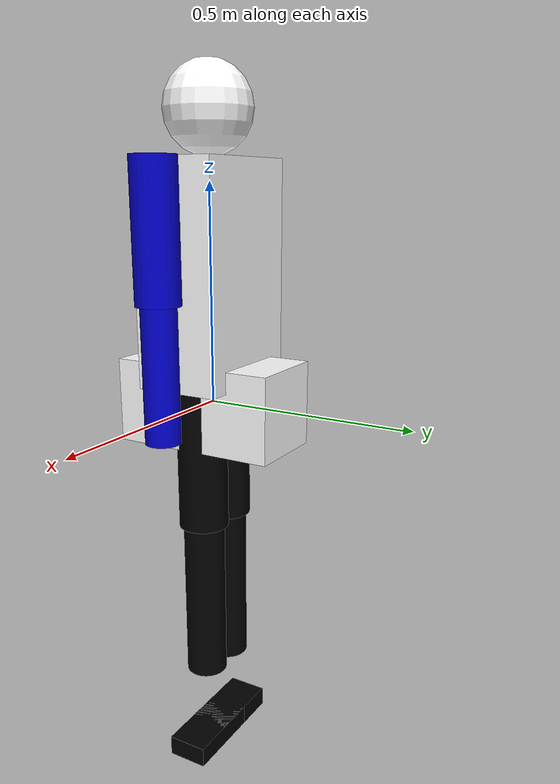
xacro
<?xml version="1.0" ?>
<robot name="simple_humanoid" xmlns:xacro="http://www.ros.org/wiki/xacro">

  <!-- Constants -->
  <xacro:property name="M_PI" value="3.1415926535897931" />

  <!-- Materials -->
  <material name="blue">
    <color rgba="0.0 0.0 0.8 1.0"/>
  </material>
  <material name="black">
    <color rgba="0.0 0.0 0.0 1.0"/>
  </material>
  <material name="white">
    <color rgba="1.0 1.0 1.0 1.0"/>
  </material>

  <!-- Base Link -->
  <link name="base_link">
    <visual>
      <geometry>
        <box size="0.2 .4 .2"/>
      </geometry>
      <material name="white"/>
    </visual>
    <collision>
      <geometry>
        <box size="0.2 .4 .2"/>
      </geometry>
    </collision>
    <inertial>
      <mass value="5.0"/>
      <inertia ixx="0.1" ixy="0.0" ixz="0.0" iyy="0.1" iyz="0.0" izz="0.1"/>
    </inertial>
  </link>

  <!-- Torso -->
  <joint name="torso_joint" type="fixed">
    <parent link="base_link"/>
    <child link="torso"/>
    <origin xyz="0 0 0.3" rpy="0 0 0"/>
  </joint>

  <link name="torso">
    <visual>
      <geometry>
        <box size="0.3 0.2 0.5"/>
      </geometry>
      <material name="white"/>
    </visual>
    <collision>
      <geometry>
        <box size="0.3 0.2 0.5"/>
      </geometry>
    </collision>
    <inertial>
      <mass value="10.0"/>
      <inertia ixx="0.2" ixy="0.0" ixz="0.0" iyy="0.3" iyz="0.0" izz="0.2"/>
    </inertial>
  </link>

  <!-- Head -->
  <joint name="neck_joint" type="revolute">
    <parent link="torso"/>
    <child link="head"/>
    <origin xyz="0 0 0.35" rpy="0 0 0"/>
    <axis xyz="0 1 0"/>
    <limit lower="${-M_PI/2}" upper="${M_PI/2}" effort="100" velocity="1"/>
  </joint>

  <link name="head">
    <visual>
      <geometry>
        <sphere radius="0.1"/>
      </geometry>
      <material name="white"/>
    </visual>
    <collision>
      <geometry>
        <sphere radius="0.1"/>
      </geometry>
    </collision>
    <inertial>
      <mass value="2.0"/>
      <inertia ixx="0.01" ixy="0.0" ixz="0.0" iyy="0.01" iyz="0.0" izz="0.01"/>
    </inertial>
  </link>

  <!-- Left Arm -->
  <joint name="left_shoulder_joint" type="revolute">
    <parent link="torso"/>
    <child link="left_upper_arm"/>
    <origin xyz="0.2 0 0.1" rpy="0 0 0"/>
    <axis xyz="1 0 0"/>
    <limit lower="${-M_PI/2}" upper="${M_PI/2}" effort="100" velocity="1"/>
  </joint>

  <link name="left_upper_arm">
    <visual>
      <geometry>
        <cylinder length="0.3" radius="0.05"/>
      </geometry>
      <material name="blue"/>
    </visual>
    <collision>
      <geometry>
        <cylinder length="0.3" radius="0.05"/>
      </geometry>
    </collision>
    <inertial>
      <mass value="2.0"/>
      <inertia ixx="0.01" ixy="0.0" ixz="0.0" iyy="0.01" iyz="0.0" izz="0.01"/>
    </inertial>
  </link>

  <joint name="left_elbow_joint" type="revolute">
    <parent link="left_upper_arm"/>
    <child link="left_lower_arm"/>
    <origin xyz="0 0 -0.3" rpy="0 0 0"/>
    <axis xyz="1 0 0"/>
    <limit lower="${-M_PI/2}" upper="${M_PI/2}" effort="100" velocity="1"/>
  </joint>

  <link name="left_lower_arm">
    <visual>
      <geometry>
        <cylinder length="0.3" radius="0.04"/>
      </geometry>
      <material name="blue"/>
    </visual>
    <collision>
      <geometry>
        <cylinder length="0.3" radius="0.04"/>
      </geometry>
    </collision>
    <inertial>
      <mass value="1.5"/>
      <inertia ixx="0.01" ixy="0.0" ixz="0.0" iyy="0.01" iyz="0.0" izz="0.01"/>
    </inertial>
  </link>

  <!-- Right Arm -->
  <joint name="right_shoulder_joint" type="revolute">
    <parent link="torso"/>
    <child link="right_upper_arm"/>
    <origin xyz="-0.2 0 0.1" rpy="0 0 0"/>
    <axis xyz="1 0 0"/>
    <limit lower="${-M_PI/2}" upper="${M_PI/2}" effort="100" velocity="1"/>
  </joint>

  <link name="right_upper_arm">
    <visual>
      <geometry>
        <cylinder length="0.3" radius="0.05"/>
      </geometry>
      <material name="blue"/>
    </visual>
    <collision>
      <geometry>
        <cylinder length="0.3" radius="0.05"/>
      </geometry>
    </collision>
    <inertial>
      <mass value="2.0"/>
      <inertia ixx="0.01" ixy="0.0" ixz="0.0" iyy="0.01" iyz="0.0" izz="0.01"/>
    </inertial>
  </link>

  <joint name="right_elbow_joint" type="revolute">
    <parent link="right_upper_arm"/>
    <child link="right_lower_arm"/>
    <origin xyz="0 0 -0.3" rpy="0 0 0"/>
    <axis xyz="1 0 0"/>
    <limit lower="${-M_PI/2}" upper="${M_PI/2}" effort="100" velocity="1"/>
  </joint>

  <link name="right_lower_arm">
    <visual>
      <geometry>
        <cylinder length="0.3" radius="0.04"/>
      </geometry>
      <material name="blue"/>
    </visual>
    <collision>
      <geometry>
        <cylinder length="0.3" radius="0.04"/>
      </geometry>
    </collision>
    <inertial>
      <mass value="1.5"/>
      <inertia ixx="0.01" ixy="0.0" ixz="0.0" iyy="0.01" iyz="0.0" izz="0.01"/>
    </inertial>
  </link>

  <!-- Left Leg -->
  <joint name="left_hip_joint" type="revolute">
    <parent link="base_link"/>
    <child link="left_upper_leg"/>
    <origin xyz="0.05 0 -0.1" rpy="0 0 0"/>
    <axis xyz="1 0 0"/>
    <limit lower="${-M_PI/2}" upper="${M_PI/2}" effort="200" velocity="1"/>
  </joint>

  <link name="left_upper_leg">
    <visual>
      <geometry>
        <cylinder length="0.4" radius="0.06"/>
      </geometry>
      <material name="black"/>
    </visual>
    <collision>
      <geometry>
        <cylinder length="0.4" radius="0.06"/>
      </geometry>
    </collision>
    <inertial>
      <mass value="3.0"/>
      <inertia ixx="0.02" ixy="0.0" ixz="0.0" iyy="0.02" iyz="0.0" izz="0.02"/>
    </inertial>
  </link>

  <joint name="left_knee_joint" type="revolute">
    <parent link="left_upper_leg"/>
    <child link="left_lower_leg"/>
    <origin xyz="0 0 -0.4" rpy="0 0 0"/>
    <axis xyz="1 0 0"/>
    <limit lower="${-M_PI/2}" upper="${M_PI/2}" effort="200" velocity="1"/>
  </joint>

  <link name="left_lower_leg">
    <visual>
      <geometry>
        <cylinder length="0.4" radius="0.05"/>
      </geometry>
      <material name="black"/>
    </visual>
    <collision>
      <geometry>
        <cylinder length="0.4" radius="0.05"/>
      </geometry>
    </collision>
    <inertial>
      <mass value="2.5"/>
      <inertia ixx="0.02" ixy="0.0" ixz="0.0" iyy="0.02" iyz="0.0" izz="0.02"/>
    </inertial>
  </link>

  <joint name="left_ankle_joint" type="revolute">
    <parent link="left_lower_leg"/>
    <child link="left_foot"/>
    <origin xyz="0 0 -0.4" rpy="0 0 0"/>
    <axis xyz="1 0 0"/>
    <limit lower="${-M_PI/4}" upper="${M_PI/4}" effort="100" velocity="1"/>
  </joint>

  <link name="left_foot">
    <visual>
      <geometry>
        <box size="0.2 0.1 0.05"/>
      </geometry>
      <material name="black"/>
    </visual>
    <collision>
      <geometry>
        <box size="0.2 0.1 0.05"/>
      </geometry>
    </collision>
    <inertial>
      <mass value="1.0"/>
      <inertia ixx="0.01" ixy="0.0" ixz="0.0" iyy="0.01" iyz="0.0" izz="0.01"/>
    </inertial>
  </link>

  <!-- Right Leg -->
  <joint name="right_hip_joint" type="revolute">
    <parent link="base_link"/>
    <child link="right_upper_leg"/>
    <origin xyz="-0.05 0 -0.1" rpy="0 0 0"/>
    <axis xyz="1 0 0"/>
    <limit lower="${-M_PI/2}" upper="${M_PI/2}" effort="200" velocity="1"/>
  </joint>

  <link name="right_upper_leg">
    <visual>
      <geometry>
        <cylinder length="0.4" radius="0.06"/>
      </geometry>
      <material name="black"/>
    </visual>
    <collision>
      <geometry>
        <cylinder length="0.4" radius="0.06"/>
      </geometry>
    </collision>
    <inertial>
      <mass value="3.0"/>
      <inertia ixx="0.02" ixy="0.0" ixz="0.0" iyy="0.02" iyz="0.0" izz="0.02"/>
    </inertial>
  </link>

  <joint name="right_knee_joint" type="revolute">
    <parent link="right_upper_leg"/>
    <child link="right_lower_leg"/>
    <origin xyz="0 0 -0.4" rpy="0 0 0"/>
    <axis xyz="1 0 0"/>
    <limit lower="${-M_PI/2}" upper="${M_PI/2}" effort="200" velocity="1"/>
  </joint>

  <link name="right_lower_leg">
    <visual>
      <geometry>
        <cylinder length="0.4" radius="0.05"/>
      </geometry>
      <material name="black"/>
    </visual>
    <collision>
      <geometry>
        <cylinder length="0.4" radius="0.05"/>
      </geometry>
    </collision>
    <inertial>
      <mass value="2.5"/>
      <inertia ixx="0.02" ixy="0.0" ixz="0.0" iyy="0.02" iyz="0.0" izz="0.02"/>
    </inertial>
  </link>

  <joint name="right_ankle_joint" type="revolute">
    <parent link="right_lower_leg"/>
    <child link="right_foot"/>
    <origin xyz="0 0 -0.4" rpy="0 0 0"/>
    <axis xyz="1 0 0"/>
    <limit lower="${-M_PI/4}" upper="${M_PI/4}" effort="100" velocity="1"/>
  </joint>

  <link name="right_foot">
    <visual>
      <geometry>
        <box size="0.2 0.1 0.05"/>
      </geometry>
      <material name="black"/>
    </visual>
    <collision>
      <geometry>
        <box size="0.2 0.1 0.05"/>
      </geometry>
    </collision>
    <inertial>
      <mass value="1.0"/>
      <inertia ixx="0.01" ixy="0.0" ixz="0.0" iyy="0.01" iyz="0.0" izz="0.01"/>
    </inertial>
  </link>

  <!-- Gazebo-specific elements -->
  <gazebo reference="base_link">
    <material>Gazebo/White</material>
  </gazebo>

  <gazebo reference="torso">
    <material>Gazebo/White</material>
  </gazebo>

  <gazebo reference="head">
    <material>Gazebo/White</material>
  </gazebo>

  <gazebo reference="left_upper_arm">
    <material>Gazebo/Blue</material>
  </gazebo>

  <gazebo reference="left_lower_arm">
    <material>Gazebo/Blue</material>
  </gazebo>

  <gazebo reference="right_upper_arm">
    <material>Gazebo/Blue</material>
  </gazebo>

  <gazebo reference="right_lower_arm">
    <material>Gazebo/Blue</material>
  </gazebo>

  <gazebo reference="left_upper_leg">
    <material>Gazebo/Black</material>
  </gazebo>

  <gazebo reference="left_lower_leg">
    <material>Gazebo/Black</material>
  </gazebo>

  <gazebo reference="left_foot">
    <material>Gazebo/Black</material>
  </gazebo>

  <gazebo reference="right_upper_leg">
    <material>Gazebo/Black</material>
  </gazebo>

  <gazebo reference="right_lower_leg">
    <material>Gazebo/Black</material>
  </gazebo>

  <gazebo reference="right_foot">
    <material>Gazebo/Black</material>
  </gazebo>

  <!-- Transmission elements for ROS control -->
  <transmission name="tran_left_shoulder">
    <type>transmission_interface/SimpleTransmission</type>
    <joint name="left_shoulder_joint">
      <hardwareInterface>hardware_interface/EffortJointInterface</hardwareInterface>
    </joint>
    <actuator name="motor_left_shoulder">
      <hardwareInterface>hardware_interface/EffortJointInterface</hardwareInterface>
      <mechanicalReduction>1</mechanicalReduction>
    </actuator>
  </transmission>

  <transmission name="tran_left_elbow">
    <type>transmission_interface/SimpleTransmission</type>
    <joint name="left_elbow_joint">
      <hardwareInterface>hardware_interface/EffortJointInterface</hardwareInterface>
    </joint>
    <actuator name="motor_left_elbow">
      <hardwareInterface>hardware_interface/EffortJointInterface</hardwareInterface>
      <mechanicalReduction>1</mechanicalReduction>
    </actuator>
  </transmission>

  <transmission name="tran_right_shoulder">
    <type>transmission_interface/SimpleTransmission</type>
    <joint name="right_shoulder_joint">
      <hardwareInterface>hardware_interface/EffortJointInterface</hardwareInterface>
    </joint>
    <actuator name="motor_right_shoulder">
      <hardwareInterface>hardware_interface/EffortJointInterface</hardwareInterface>
      <mechanicalReduction>1</mechanicalReduction>
    </actuator>
  </transmission>

  <transmission name="tran_right_elbow">
    <type>transmission_interface/SimpleTransmission</type>
    <joint name="right_elbow_joint">
      <hardwareInterface>hardware_interface/EffortJointInterface</hardwareInterface>
    </joint>
    <actuator name="motor_right_elbow">
      <hardwareInterface>hardware_interface/EffortJointInterface</hardwareInterface>
      <mechanicalReduction>1</mechanicalReduction>
    </actuator>
  </transmission>

  <transmission name="tran_left_hip">
    <type>transmission_interface/SimpleTransmission</type>
    <joint name="left_hip_joint">
      <hardwareInterface>hardware_interface/EffortJointInterface</hardwareInterface>
    </joint>
    <actuator name="motor_left_hip">
      <hardwareInterface>hardware_interface/EffortJointInterface</hardwareInterface>
      <mechanicalReduction>1</mechanicalReduction>
    </actuator>
  </transmission>

  <transmission name="tran_left_knee">
    <type>transmission_interface/SimpleTransmission</type>
    <joint name="left_knee_joint">
      <hardwareInterface>hardware_interface/EffortJointInterface</hardwareInterface>
    </joint>
    <actuator name="motor_left_knee">
      <hardwareInterface>hardware_interface/EffortJointInterface</hardwareInterface>
      <mechanicalReduction>1</mechanicalReduction>
    </actuator>
  </transmission>

  <transmission name="tran_left_ankle">
    <type>transmission_interface/SimpleTransmission</type>
    <joint name="left_ankle_joint">
      <hardwareInterface>hardware_interface/EffortJointInterface</hardwareInterface>
    </joint>
    <actuator name="motor_left_ankle">
      <hardwareInterface>hardware_interface/EffortJointInterface</hardwareInterface>
      <mechanicalReduction>1</mechanicalReduction>
    </actuator>
  </transmission>

  <transmission name="tran_right_hip">
    <type>transmission_interface/SimpleTransmission</type>
    <joint name="right_hip_joint">
      <hardwareInterface>hardware_interface/EffortJointInterface</hardwareInterface>
    </joint>
    <actuator name="motor_right_hip">
      <hardwareInterface>hardware_interface/EffortJointInterface</hardwareInterface>
      <mechanicalReduction>1</mechanicalReduction>
    </actuator>
  </transmission>

  <transmission name="tran_right_knee">
    <type>transmission_interface/SimpleTransmission</type>
    <joint name="right_knee_joint">
      <hardwareInterface>hardware_interface/EffortJointInterface</hardwareInterface>
    </joint>
    <actuator name="motor_right_knee">
      <hardwareInterface>hardware_interface/EffortJointInterface</hardwareInterface>
      <mechanicalReduction>1</mechanicalReduction>
    </actuator>
  </transmission>

  <transmission name="tran_right_ankle">
    <type>transmission_interface/SimpleTransmission</type>
    <joint name="right_ankle_joint">
      <hardwareInterface>hardware_interface/EffortJointInterface</hardwareInterface>
    </joint>
    <actuator name="motor_right_ankle">
      <hardwareInterface>hardware_interface/EffortJointInterface</hardwareInterface>
      <mechanicalReduction>1</mechanicalReduction>
    </actuator>
  </transmission>

  <transmission name="tran_neck">
    <type>transmission_interface/SimpleTransmission</type>
    <joint name="neck_joint">
      <hardwareInterface>hardware_interface/EffortJointInterface</hardwareInterface>
    </joint>
    <actuator name="motor_neck">
      <hardwareInterface>hardware_interface/EffortJointInterface</hardwareInterface>
      <mechanicalReduction>1</mechanicalReduction>
    </actuator>
  </transmission>

</robot>
